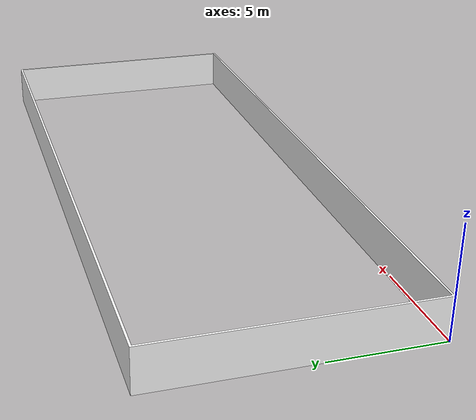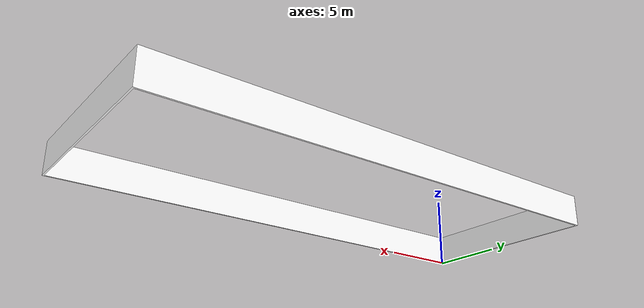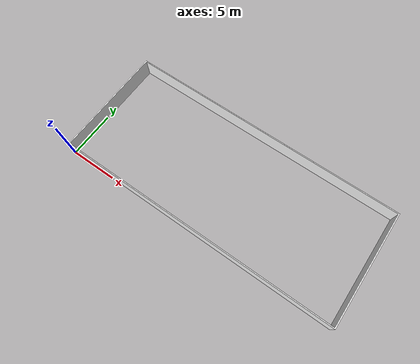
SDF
<?xml version="1.0" ?>
<sdf version="1.5">
  <model name="room_closed_30m_12m">
    <static>true</static>
    <pose>0 0 0 0 0 0</pose>
    <link name="walls">
      <collision name="collision">
        <geometry>
          <mesh>
            <uri>model://room_closed_30m_12m/meshes/room_closed_30m_12m.dae</uri>
          </mesh>
        </geometry>
      </collision>
      <visual name="visual">
        <geometry>
          <mesh>
            <uri>model://room_closed_30m_12m/meshes/room_closed_30m_12m.dae</uri>
          </mesh>
        </geometry>
        <cast_shadows>false</cast_shadows>
      </visual>
    </link>
  </model>
</sdf>
